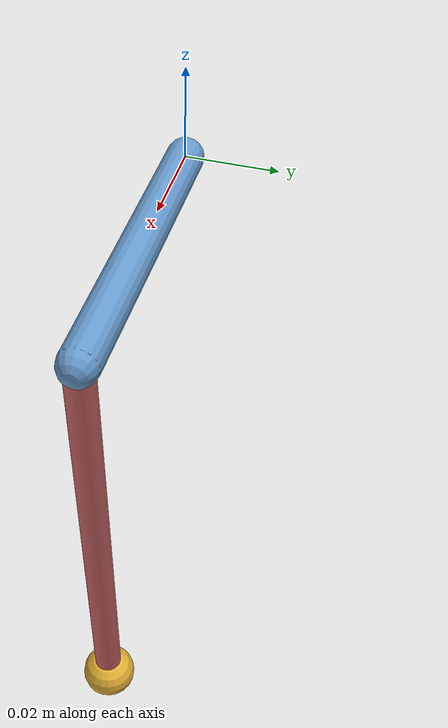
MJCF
<?xml version="1.0"?>
<mujoco model="rotary_inverted_pendulum">
  <option timestep="0.001" gravity="0 0 -9.81" integrator="implicitfast"/>

  <default>
    <joint armature="0" damping="0"/>
    <geom contype="0" conaffinity="0" rgba="0.6 0.6 0.6 1"/>
  </default>

  <worldbody>
    <light diffuse="0.7 0.7 0.7" pos="0 0 1" dir="0 0 -1"/>

    <body name="arm" pos="0 0 0">
      <joint name="motor_joint" type="hinge" axis="0 0 1"
             range="-2.356194490192345 2.356194490192345" limited="true"
             damping="0.0001" frictionloss="0"/>
      <inertial pos="0.035 0 0" mass="0.03"
                diaginertia="1e-6 1.0562500000000001e-05 1.0562500000000001e-05"/>
      <geom name="arm_visual" type="capsule"
            fromto="0 0 0 0.065 0 0" size="0.004"
            rgba="0.4 0.6 0.8 1"/>

      <body name="pendulum" pos="0.065 0 0">
        <joint name="pendulum_joint" type="hinge" axis="1 0 0"
               damping="9.899130726538984e-06"
               frictionloss="1.846467096315846e-05"/>
        <inertial pos="0 0 -0.051" mass="0.014"
                  diaginertia="8.06e-06 8.06e-06 1e-07"/>
        <geom name="pendulum_visual" type="capsule"
              fromto="0 0 0 0 0 -0.102" size="0.003"
              rgba="0.8 0.4 0.4 1"/>
        <geom name="pendulum_tip" type="sphere" pos="0 0 -0.102"
              size="0.006" rgba="0.9 0.7 0.2 1"/>
      </body>
    </body>
  </worldbody>

  <actuator>
    <position name="motor" joint="motor_joint"
              kp="1000.0" kv="0.777010939433931"
              ctrlrange="-2.181661564992912 2.181661564992912"/>
  </actuator>
</mujoco>
